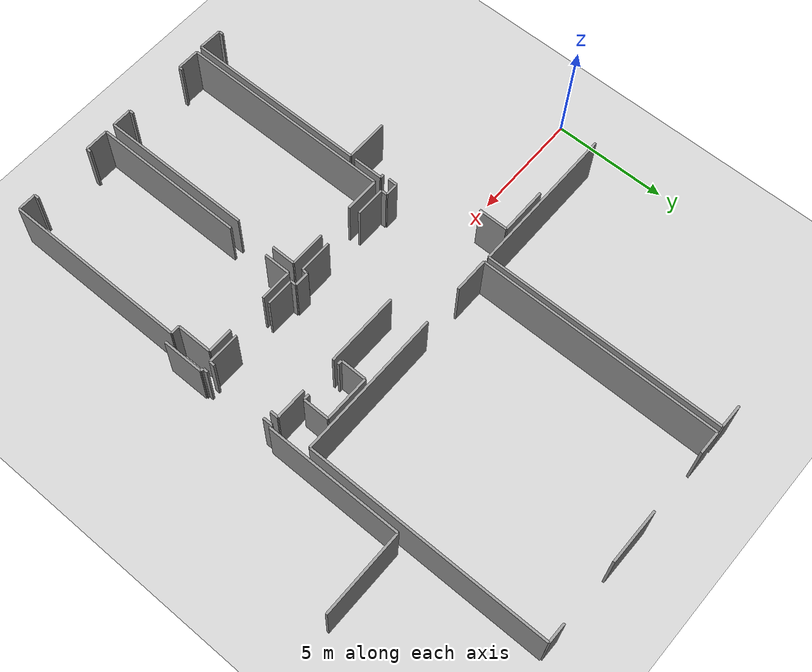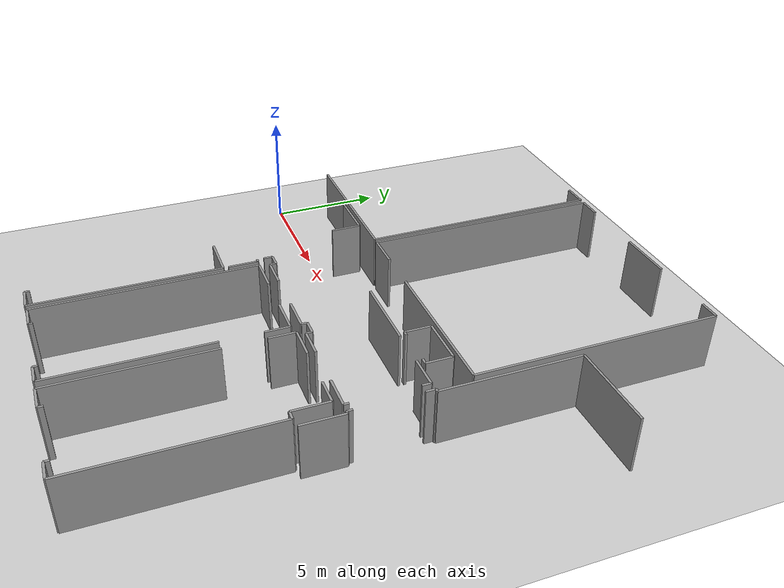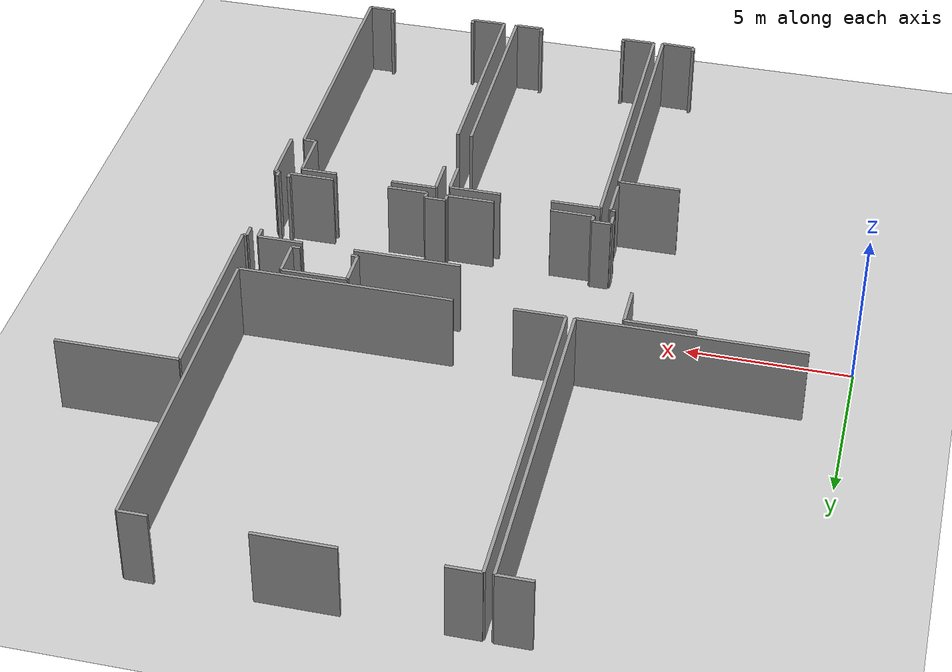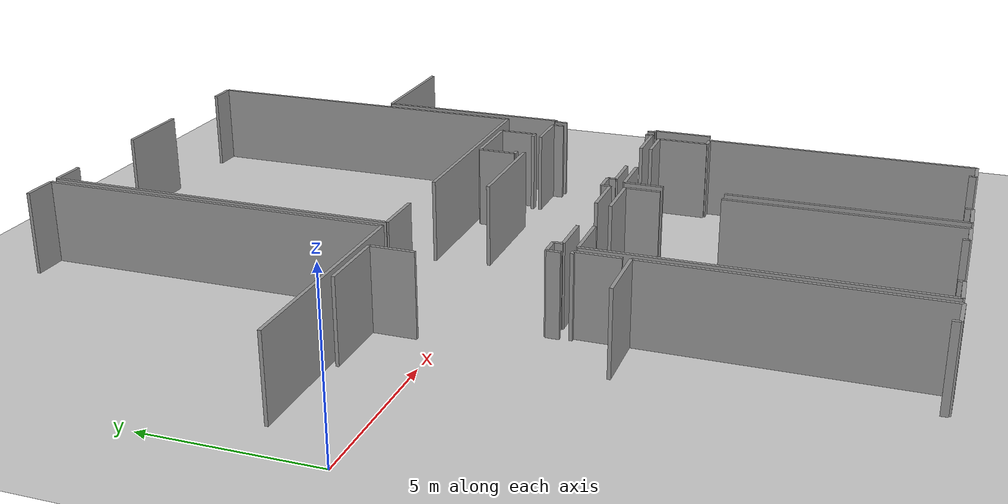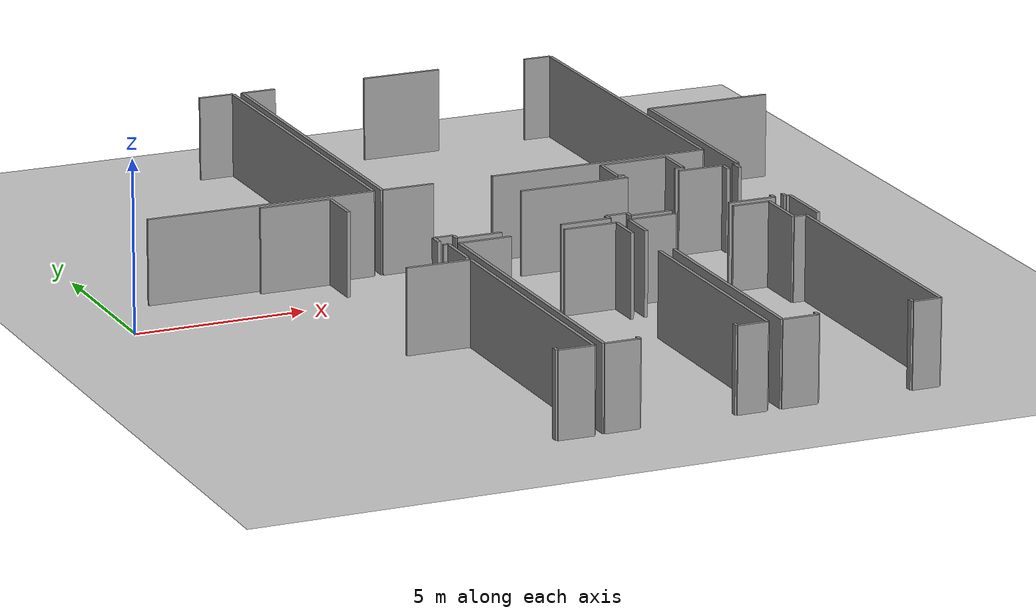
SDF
<sdf version="1.6">
 <world name="default">
  <model name="ground_plane">
   <static>1</static>
   <link name="link">
    <collision name="collision">
     <geometry><plane><normal>0 0 1</normal><size>100 100</size></plane></geometry>
     <surface><friction><ode><mu>100</mu><mu2>50</mu2></ode></friction></surface>
    </collision>
    <visual name="visual">
     <cast_shadows>0</cast_shadows>
     <geometry><plane><normal>0 0 1</normal><size>100 100</size></plane></geometry>
     <material>
      <script><uri>file://media/materials/scripts/gazebo.material</uri><name>Gazebo/Grey</name></script>
     </material>
    </visual>
   </link>
  </model>
  <model name="0510030966_A-40">
   <static>1</static>
   <link name="Wall_44">
    <collision name="Wall_44_Collision">
     <geometry><box><size>3.28197833183 0.1 2.5</size></box></geometry>
     <pose>1.64098916592 0 1.25 0 0 0</pose>
    </collision>
    <visual name="Wall_44_Visual">
     <pose>1.64098916592 0 1.25 0 0 0</pose>
     <geometry><box><size>3.28197833183 0.1 2.5</size></box></geometry>
     <material>
      <script><uri>file://media/materials/scripts/gazebo.material</uri><name>Gazebo/Grey</name></script>
      <ambient>1 1 1 1</ambient>
     </material>
    </visual>
    <pose>50.7630853645 -12.2985279362 0 0 0 0.0</pose>
   </link>
   <link name="Wall_45">
    <collision name="Wall_45_Collision">
     <geometry><box><size>1.38290170577 0.1 2.5</size></box></geometry>
     <pose>0.691450852883 0 1.25 0 0 0</pose>
    </collision>
    <visual name="Wall_45_Visual">
     <pose>0.691450852883 0 1.25 0 0 0</pose>
     <geometry><box><size>1.38290170577 0.1 2.5</size></box></geometry>
     <material>
      <script><uri>file://media/materials/scripts/gazebo.material</uri><name>Gazebo/Grey</name></script>
      <ambient>1 1 1 1</ambient>
     </material>
    </visual>
    <pose>55.64477411 -12.2985279362 0 0 0 0.0</pose>
   </link>
   <link name="Wall_46">
    <collision name="Wall_46_Collision">
     <geometry><box><size>0.361728881155 0.1 2.5</size></box></geometry>
     <pose>0.180864440578 0 1.25 0 0 0</pose>
    </collision>
    <visual name="Wall_46_Visual">
     <pose>0.180864440578 0 1.25 0 0 0</pose>
     <geometry><box><size>0.361728881155 0.1 2.5</size></box></geometry>
     <material>
      <script><uri>file://media/materials/scripts/gazebo.material</uri><name>Gazebo/Grey</name></script>
      <ambient>1 1 1 1</ambient>
     </material>
    </visual>
    <pose>57.0276758157 -12.2985279362 0 0 0 -1.57079632679</pose>
   </link>
   <link name="Wall_47">
    <collision name="Wall_47_Collision">
     <geometry><box><size>0.209950084463 0.1 2.5</size></box></geometry>
     <pose>0.104975042231 0 1.25 0 0 0</pose>
    </collision>
    <visual name="Wall_47_Visual">
     <pose>0.104975042231 0 1.25 0 0 0</pose>
     <geometry><box><size>0.209950084463 0.1 2.5</size></box></geometry>
     <material>
      <script><uri>file://media/materials/scripts/gazebo.material</uri><name>Gazebo/Grey</name></script>
      <ambient>1 1 1 1</ambient>
     </material>
    </visual>
    <pose>57.0276758157 -15.4362211525 0 0 0 -1.57079632679</pose>
   </link>
   <link name="Wall_48">
    <collision name="Wall_48_Collision">
     <geometry><box><size>1.40601780702 0.1 2.5</size></box></geometry>
     <pose>0.703008903509 0 1.25 0 0 0</pose>
    </collision>
    <visual name="Wall_48_Visual">
     <pose>0.703008903509 0 1.25 0 0 0</pose>
     <geometry><box><size>1.40601780702 0.1 2.5</size></box></geometry>
     <material>
      <script><uri>file://media/materials/scripts/gazebo.material</uri><name>Gazebo/Grey</name></script>
      <ambient>1 1 1 1</ambient>
     </material>
    </visual>
    <pose>57.0276758157 -15.646171237 0 0 0 3.14159265359</pose>
   </link>
   <link name="Wall_49">
    <collision name="Wall_49_Collision">
     <geometry><box><size>1.24153785579 0.1 2.5</size></box></geometry>
     <pose>0.620768927896 0 1.25 0 0 0</pose>
    </collision>
    <visual name="Wall_49_Visual">
     <pose>0.620768927896 0 1.25 0 0 0</pose>
     <geometry><box><size>1.24153785579 0.1 2.5</size></box></geometry>
     <material>
      <script><uri>file://media/materials/scripts/gazebo.material</uri><name>Gazebo/Grey</name></script>
      <ambient>1 1 1 1</ambient>
     </material>
    </visual>
    <pose>53.8617860364 -15.646171237 0 0 0 3.14159265359</pose>
   </link>
   <link name="Wall_50">
    <collision name="Wall_50_Collision">
     <geometry><box><size>0.251101825156 0.1 2.5</size></box></geometry>
     <pose>0.125550912578 0 1.25 0 0 0</pose>
    </collision>
    <visual name="Wall_50_Visual">
     <pose>0.125550912578 0 1.25 0 0 0</pose>
     <geometry><box><size>0.251101825156 0.1 2.5</size></box></geometry>
     <material>
      <script><uri>file://media/materials/scripts/gazebo.material</uri><name>Gazebo/Grey</name></script>
      <ambient>1 1 1 1</ambient>
     </material>
    </visual>
    <pose>52.6202481806 -15.646171237 0 0 0 1.57079632679</pose>
   </link>
   <link name="Wall_51">
    <collision name="Wall_51_Collision">
     <geometry><box><size>0.642678419468 0.1 2.5</size></box></geometry>
     <pose>0.321339209734 0 1.25 0 0 0</pose>
    </collision>
    <visual name="Wall_51_Visual">
     <pose>0.321339209734 0 1.25 0 0 0</pose>
     <geometry><box><size>0.642678419468 0.1 2.5</size></box></geometry>
     <material>
      <script><uri>file://media/materials/scripts/gazebo.material</uri><name>Gazebo/Grey</name></script>
      <ambient>1 1 1 1</ambient>
     </material>
    </visual>
    <pose>52.6202481806 -15.3950694118 0 0 0 3.14159265359</pose>
   </link>
   <link name="Wall_52">
    <collision name="Wall_52_Collision">
     <geometry><box><size>0.248307571158 0.1 2.5</size></box></geometry>
     <pose>0.124153785579 0 1.25 0 0 0</pose>
    </collision>
    <visual name="Wall_52_Visual">
     <pose>0.124153785579 0 1.25 0 0 0</pose>
     <geometry><box><size>0.248307571158 0.1 2.5</size></box></geometry>
     <material>
      <script><uri>file://media/materials/scripts/gazebo.material</uri><name>Gazebo/Grey</name></script>
      <ambient>1 1 1 1</ambient>
     </material>
    </visual>
    <pose>51.9775697611 -15.3950694118 0 0 0 -1.57079632679</pose>
   </link>
   <link name="Wall_53">
    <collision name="Wall_53_Collision">
     <geometry><box><size>1.47777933014 0.1 2.5</size></box></geometry>
     <pose>0.738889665071 0 1.25 0 0 0</pose>
    </collision>
    <visual name="Wall_53_Visual">
     <pose>0.738889665071 0 1.25 0 0 0</pose>
     <geometry><box><size>1.47777933014 0.1 2.5</size></box></geometry>
     <material>
      <script><uri>file://media/materials/scripts/gazebo.material</uri><name>Gazebo/Grey</name></script>
      <ambient>1 1 1 1</ambient>
     </material>
    </visual>
    <pose>51.9775697611 -15.643376983 0 0 0 3.14159265359</pose>
   </link>
   <link name="Wall_54">
    <collision name="Wall_54_Collision">
     <geometry><box><size>1.33362122617 0.1 2.5</size></box></geometry>
     <pose>0.666810613085 0 1.25 0 0 0</pose>
    </collision>
    <visual name="Wall_54_Visual">
     <pose>0.666810613085 0 1.25 0 0 0</pose>
     <geometry><box><size>1.33362122617 0.1 2.5</size></box></geometry>
     <material>
      <script><uri>file://media/materials/scripts/gazebo.material</uri><name>Gazebo/Grey</name></script>
      <ambient>1 1 1 1</ambient>
     </material>
    </visual>
    <pose>48.7089276415 -15.643376983 0 0 0 3.14159265359</pose>
   </link>
   <link name="Wall_55">
    <collision name="Wall_55_Collision">
     <geometry><box><size>0.271169649321 0.1 2.5</size></box></geometry>
     <pose>0.135584824661 0 1.25 0 0 0</pose>
    </collision>
    <visual name="Wall_55_Visual">
     <pose>0.135584824661 0 1.25 0 0 0</pose>
     <geometry><box><size>0.271169649321 0.1 2.5</size></box></geometry>
     <material>
      <script><uri>file://media/materials/scripts/gazebo.material</uri><name>Gazebo/Grey</name></script>
      <ambient>1 1 1 1</ambient>
     </material>
    </visual>
    <pose>47.3753064154 -15.643376983 0 0 0 1.57079632679</pose>
   </link>
   <link name="Wall_56">
    <collision name="Wall_56_Collision">
     <geometry><box><size>0.584253108608 0.1 2.5</size></box></geometry>
     <pose>0.292126554304 0 1.25 0 0 0</pose>
    </collision>
    <visual name="Wall_56_Visual">
     <pose>0.292126554304 0 1.25 0 0 0</pose>
     <geometry><box><size>0.584253108608 0.1 2.5</size></box></geometry>
     <material>
      <script><uri>file://media/materials/scripts/gazebo.material</uri><name>Gazebo/Grey</name></script>
      <ambient>1 1 1 1</ambient>
     </material>
    </visual>
    <pose>47.3753064154 -15.3722073336 0 0 0 3.14159265359</pose>
   </link>
   <link name="Wall_57">
    <collision name="Wall_57_Collision">
     <geometry><box><size>0.390052455768 0.1 2.5</size></box></geometry>
     <pose>0.195026227884 0 1.25 0 0 0</pose>
    </collision>
    <visual name="Wall_57_Visual">
     <pose>0.195026227884 0 1.25 0 0 0</pose>
     <geometry><box><size>0.390052455768 0.1 2.5</size></box></geometry>
     <material>
      <script><uri>file://media/materials/scripts/gazebo.material</uri><name>Gazebo/Grey</name></script>
      <ambient>1 1 1 1</ambient>
     </material>
    </visual>
    <pose>46.7910533067 -15.3722073336 0 0 0 -1.57079632679</pose>
   </link>
   <link name="Wall_159">
    <collision name="Wall_159_Collision">
     <geometry><box><size>8.13420039882 0.1 2.5</size></box></geometry>
     <pose>4.06710019941 0 1.25 0 0 0</pose>
    </collision>
    <visual name="Wall_159_Visual">
     <pose>4.06710019941 0 1.25 0 0 0</pose>
     <geometry><box><size>8.13420039882 0.1 2.5</size></box></geometry>
     <material>
      <script><uri>file://media/materials/scripts/gazebo.material</uri><name>Gazebo/Grey</name></script>
      <ambient>1 1 1 1</ambient>
     </material>
    </visual>
    <pose>46.9465154383 -25.727458626 0 0 0 1.57079632679</pose>
   </link>
   <link name="Wall_160">
    <collision name="Wall_160_Collision">
     <geometry><box><size>1.90949157278 0.1 2.5</size></box></geometry>
     <pose>0.954745786392 0 1.25 0 0 0</pose>
    </collision>
    <visual name="Wall_160_Visual">
     <pose>0.954745786392 0 1.25 0 0 0</pose>
     <geometry><box><size>1.90949157278 0.1 2.5</size></box></geometry>
     <material>
      <script><uri>file://media/materials/scripts/gazebo.material</uri><name>Gazebo/Grey</name></script>
      <ambient>1 1 1 1</ambient>
     </material>
    </visual>
    <pose>46.9465154383 -17.5932582272 0 0 0 3.14159265359</pose>
   </link>
   <link name="Wall_167">
    <collision name="Wall_167_Collision">
     <geometry><box><size>0.208679969009 0.1 2.5</size></box></geometry>
     <pose>0.104339984505 0 1.25 0 0 0</pose>
    </collision>
    <visual name="Wall_167_Visual">
     <pose>0.104339984505 0 1.25 0 0 0</pose>
     <geometry><box><size>0.208679969009 0.1 2.5</size></box></geometry>
     <material>
      <script><uri>file://media/materials/scripts/gazebo.material</uri><name>Gazebo/Grey</name></script>
      <ambient>1 1 1 1</ambient>
     </material>
    </visual>
    <pose>45.902607547 -25.493630371 0 0 0 -1.57079632679</pose>
   </link>
   <link name="Wall_168">
    <collision name="Wall_168_Collision">
     <geometry><box><size>1.04421076496 0.1 2.5</size></box></geometry>
     <pose>0.522105382479 0 1.25 0 0 0</pose>
    </collision>
    <visual name="Wall_168_Visual">
     <pose>0.522105382479 0 1.25 0 0 0</pose>
     <geometry><box><size>1.04421076496 0.1 2.5</size></box></geometry>
     <material>
      <script><uri>file://media/materials/scripts/gazebo.material</uri><name>Gazebo/Grey</name></script>
      <ambient>1 1 1 1</ambient>
     </material>
    </visual>
    <pose>45.902607547 -25.70231034 0 0 0 -0.0240858632459</pose>
   </link>
   <link name="Wall_169">
    <collision name="Wall_169_Collision">
     <geometry><box><size>6.78889411047 0.1 2.5</size></box></geometry>
     <pose>3.39444705524 0 1.25 0 0 0</pose>
    </collision>
    <visual name="Wall_169_Visual">
     <pose>3.39444705524 0 1.25 0 0 0</pose>
     <geometry><box><size>6.78889411047 0.1 2.5</size></box></geometry>
     <material>
      <script><uri>file://media/materials/scripts/gazebo.material</uri><name>Gazebo/Grey</name></script>
      <ambient>1 1 1 1</ambient>
     </material>
    </visual>
    <pose>51.9858255115 -25.7109471251 0 0 0 1.57079632679</pose>
   </link>
   <link name="Wall_170">
    <collision name="Wall_170_Collision">
     <geometry><box><size>1.05521191876 0.1 2.5</size></box></geometry>
     <pose>0.527605959382 0 1.25 0 0 0</pose>
    </collision>
    <visual name="Wall_170_Visual">
     <pose>0.527605959382 0 1.25 0 0 0</pose>
     <geometry><box><size>1.05521191876 0.1 2.5</size></box></geometry>
     <material>
      <script><uri>file://media/materials/scripts/gazebo.material</uri><name>Gazebo/Grey</name></script>
      <ambient>1 1 1 1</ambient>
     </material>
    </visual>
    <pose>51.9858255115 -17.1452885067 0 0 0 1.57079632679</pose>
   </link>
   <link name="Wall_171">
    <collision name="Wall_171_Collision">
     <geometry><box><size>1.59031155932 0.1 2.5</size></box></geometry>
     <pose>0.79515577966 0 1.25 0 0 0</pose>
    </collision>
    <visual name="Wall_171_Visual">
     <pose>0.79515577966 0 1.25 0 0 0</pose>
     <geometry><box><size>1.59031155932 0.1 2.5</size></box></geometry>
     <material>
      <script><uri>file://media/materials/scripts/gazebo.material</uri><name>Gazebo/Grey</name></script>
      <ambient>1 1 1 1</ambient>
     </material>
    </visual>
    <pose>51.9858255115 -16.090076588 0 0 0 3.14159265359</pose>
   </link>
   <link name="Wall_172">
    <collision name="Wall_172_Collision">
     <geometry><box><size>1.54623855308 0.1 2.5</size></box></geometry>
     <pose>0.773119276542 0 1.25 0 0 0</pose>
    </collision>
    <visual name="Wall_172_Visual">
     <pose>0.773119276542 0 1.25 0 0 0</pose>
     <geometry><box><size>1.54623855308 0.1 2.5</size></box></geometry>
     <material>
      <script><uri>file://media/materials/scripts/gazebo.material</uri><name>Gazebo/Grey</name></script>
      <ambient>1 1 1 1</ambient>
     </material>
    </visual>
    <pose>48.7961845732 -16.090076588 0 0 0 3.14159265359</pose>
   </link>
   <link name="Wall_173">
    <collision name="Wall_173_Collision">
     <geometry><box><size>9.59546822806 0.1 2.5</size></box></geometry>
     <pose>4.79773411403 0 1.25 0 0 0</pose>
    </collision>
    <visual name="Wall_173_Visual">
     <pose>4.79773411403 0 1.25 0 0 0</pose>
     <geometry><box><size>9.59546822806 0.1 2.5</size></box></geometry>
     <material>
      <script><uri>file://media/materials/scripts/gazebo.material</uri><name>Gazebo/Grey</name></script>
      <ambient>1 1 1 1</ambient>
     </material>
    </visual>
    <pose>47.2499460201 -16.090076588 0 0 0 -1.57079632679</pose>
   </link>
   <link name="Wall_174">
    <collision name="Wall_174_Collision">
     <geometry><box><size>1.02714236724 0.1 2.5</size></box></geometry>
     <pose>0.513571183621 0 1.25 0 0 0</pose>
    </collision>
    <visual name="Wall_174_Visual">
     <pose>0.513571183621 0 1.25 0 0 0</pose>
     <geometry><box><size>1.02714236724 0.1 2.5</size></box></geometry>
     <material>
      <script><uri>file://media/materials/scripts/gazebo.material</uri><name>Gazebo/Grey</name></script>
      <ambient>1 1 1 1</ambient>
     </material>
    </visual>
    <pose>47.2499460201 -25.685544816 0 0 0 0.0</pose>
   </link>
   <link name="Wall_175">
    <collision name="Wall_175_Collision">
     <geometry><box><size>0.165115008954 0.1 2.5</size></box></geometry>
     <pose>0.0825575044772 0 1.25 0 0 0</pose>
    </collision>
    <visual name="Wall_175_Visual">
     <pose>0.0825575044772 0 1.25 0 0 0</pose>
     <geometry><box><size>0.165115008954 0.1 2.5</size></box></geometry>
     <material>
      <script><uri>file://media/materials/scripts/gazebo.material</uri><name>Gazebo/Grey</name></script>
      <ambient>1 1 1 1</ambient>
     </material>
    </visual>
    <pose>48.2770883873 -25.685544816 0 0 0 1.57079632679</pose>
   </link>
   <link name="Wall_176">
    <collision name="Wall_176_Collision">
     <geometry><box><size>0.192041456568 0.1 2.5</size></box></geometry>
     <pose>0.0960207282842 0 1.25 0 0 0</pose>
    </collision>
    <visual name="Wall_176_Visual">
     <pose>0.0960207282842 0 1.25 0 0 0</pose>
     <geometry><box><size>0.192041456568 0.1 2.5</size></box></geometry>
     <material>
      <script><uri>file://media/materials/scripts/gazebo.material</uri><name>Gazebo/Grey</name></script>
      <ambient>1 1 1 1</ambient>
     </material>
    </visual>
    <pose>51.1025872252 -25.5204298071 0 0 0 -1.57079632679</pose>
   </link>
   <link name="Wall_177">
    <collision name="Wall_177_Collision">
     <geometry><box><size>0.883239601405 0.1 2.5</size></box></geometry>
     <pose>0.441619800703 0 1.25 0 0 0</pose>
    </collision>
    <visual name="Wall_177_Visual">
     <pose>0.441619800703 0 1.25 0 0 0</pose>
     <geometry><box><size>0.883239601405 0.1 2.5</size></box></geometry>
     <material>
      <script><uri>file://media/materials/scripts/gazebo.material</uri><name>Gazebo/Grey</name></script>
      <ambient>1 1 1 1</ambient>
     </material>
    </visual>
    <pose>51.1025872252 -25.7124712636 0 0 0 0.00172562382642</pose>
   </link>
   <link name="Wall_178">
    <collision name="Wall_178_Collision">
     <geometry><box><size>6.78965617975 0.1 2.5</size></box></geometry>
     <pose>3.39482808987 0 1.25 0 0 0</pose>
    </collision>
    <visual name="Wall_178_Visual">
     <pose>3.39482808987 0 1.25 0 0 0</pose>
     <geometry><box><size>6.78965617975 0.1 2.5</size></box></geometry>
     <material>
      <script><uri>file://media/materials/scripts/gazebo.material</uri><name>Gazebo/Grey</name></script>
      <ambient>1 1 1 1</ambient>
     </material>
    </visual>
    <pose>52.4177917773 -25.7119632175 0 0 0 1.57079632679</pose>
   </link>
   <link name="Wall_179">
    <collision name="Wall_179_Collision">
     <geometry><box><size>1.16190161686 0.1 2.5</size></box></geometry>
     <pose>0.580950808428 0 1.25 0 0 0</pose>
    </collision>
    <visual name="Wall_179_Visual">
     <pose>0.580950808428 0 1.25 0 0 0</pose>
     <geometry><box><size>1.16190161686 0.1 2.5</size></box></geometry>
     <material>
      <script><uri>file://media/materials/scripts/gazebo.material</uri><name>Gazebo/Grey</name></script>
      <ambient>1 1 1 1</ambient>
     </material>
    </visual>
    <pose>52.4177917773 -17.1212833247 0 0 0 1.57079632679</pose>
   </link>
   <link name="Wall_180">
    <collision name="Wall_180_Collision">
     <geometry><box><size>1.41338447665 0.1 2.5</size></box></geometry>
     <pose>0.706692238324 0 1.25 0 0 0</pose>
    </collision>
    <visual name="Wall_180_Visual">
     <pose>0.706692238324 0 1.25 0 0 0</pose>
     <geometry><box><size>1.41338447665 0.1 2.5</size></box></geometry>
     <material>
      <script><uri>file://media/materials/scripts/gazebo.material</uri><name>Gazebo/Grey</name></script>
      <ambient>1 1 1 1</ambient>
     </material>
    </visual>
    <pose>52.4177917773 -15.9593817078 0 0 0 0.0</pose>
   </link>
   <link name="Wall_181">
    <collision name="Wall_181_Collision">
     <geometry><box><size>1.12176596853 0.1 2.5</size></box></geometry>
     <pose>0.560882984263 0 1.25 0 0 0</pose>
    </collision>
    <visual name="Wall_181_Visual">
     <pose>0.560882984263 0 1.25 0 0 0</pose>
     <geometry><box><size>1.12176596853 0.1 2.5</size></box></geometry>
     <material>
      <script><uri>file://media/materials/scripts/gazebo.material</uri><name>Gazebo/Grey</name></script>
      <ambient>1 1 1 1</ambient>
     </material>
    </visual>
    <pose>55.6031143231 -15.9593817078 0 0 0 0.0</pose>
   </link>
   <link name="Wall_182">
    <collision name="Wall_182_Collision">
     <geometry><box><size>1.56402016943 0.1 2.5</size></box></geometry>
     <pose>0.782010084717 0 1.25 0 0 0</pose>
    </collision>
    <visual name="Wall_182_Visual">
     <pose>0.782010084717 0 1.25 0 0 0</pose>
     <geometry><box><size>1.56402016943 0.1 2.5</size></box></geometry>
     <material>
      <script><uri>file://media/materials/scripts/gazebo.material</uri><name>Gazebo/Grey</name></script>
      <ambient>1 1 1 1</ambient>
     </material>
    </visual>
    <pose>56.7248802916 -15.9593817078 0 0 0 -1.57079632679</pose>
   </link>
   <link name="Wall_183">
    <collision name="Wall_183_Collision">
     <geometry><box><size>0.389925444223 0.1 2.5</size></box></geometry>
     <pose>0.194962722111 0 1.25 0 0 0</pose>
    </collision>
    <visual name="Wall_183_Visual">
     <pose>0.194962722111 0 1.25 0 0 0</pose>
     <geometry><box><size>0.389925444223 0.1 2.5</size></box></geometry>
     <material>
      <script><uri>file://media/materials/scripts/gazebo.material</uri><name>Gazebo/Grey</name></script>
      <ambient>1 1 1 1</ambient>
     </material>
    </visual>
    <pose>56.7248802916 -17.5234018772 0 0 0 0.0</pose>
   </link>
   <link name="Wall_184">
    <collision name="Wall_184_Collision">
     <geometry><box><size>8.17890846278 0.1 2.5</size></box></geometry>
     <pose>4.08945423139 0 1.25 0 0 0</pose>
    </collision>
    <visual name="Wall_184_Visual">
     <pose>4.08945423139 0 1.25 0 0 0</pose>
     <geometry><box><size>8.17890846278 0.1 2.5</size></box></geometry>
     <material>
      <script><uri>file://media/materials/scripts/gazebo.material</uri><name>Gazebo/Grey</name></script>
      <ambient>1 1 1 1</ambient>
     </material>
    </visual>
    <pose>57.1148057358 -17.5234018772 0 0 0 -1.57079632679</pose>
   </link>
   <link name="Wall_185">
    <collision name="Wall_185_Collision">
     <geometry><box><size>0.814906074962 0.1 2.5</size></box></geometry>
     <pose>0.407453037481 0 1.25 0 0 0</pose>
    </collision>
    <visual name="Wall_185_Visual">
     <pose>0.407453037481 0 1.25 0 0 0</pose>
     <geometry><box><size>0.814906074962 0.1 2.5</size></box></geometry>
     <material>
      <script><uri>file://media/materials/scripts/gazebo.material</uri><name>Gazebo/Grey</name></script>
      <ambient>1 1 1 1</ambient>
     </material>
    </visual>
    <pose>57.1148057358 -25.70231034 0 0 0 3.14159265359</pose>
   </link>
   <link name="Wall_186">
    <collision name="Wall_186_Collision">
     <geometry><box><size>0.208679969009 0.1 2.5</size></box></geometry>
     <pose>0.104339984505 0 1.25 0 0 0</pose>
    </collision>
    <visual name="Wall_186_Visual">
     <pose>0.104339984505 0 1.25 0 0 0</pose>
     <geometry><box><size>0.208679969009 0.1 2.5</size></box></geometry>
     <material>
      <script><uri>file://media/materials/scripts/gazebo.material</uri><name>Gazebo/Grey</name></script>
      <ambient>1 1 1 1</ambient>
     </material>
    </visual>
    <pose>56.2998996609 -25.70231034 0 0 0 1.57079632679</pose>
   </link>
   <link name="Wall_187">
    <collision name="Wall_187_Collision">
     <geometry><box><size>0.208679969009 0.1 2.5</size></box></geometry>
     <pose>0.104339984505 0 1.25 0 0 0</pose>
    </collision>
    <visual name="Wall_187_Visual">
     <pose>0.104339984505 0 1.25 0 0 0</pose>
     <geometry><box><size>0.208679969009 0.1 2.5</size></box></geometry>
     <material>
      <script><uri>file://media/materials/scripts/gazebo.material</uri><name>Gazebo/Grey</name></script>
      <ambient>1 1 1 1</ambient>
     </material>
    </visual>
    <pose>53.4854508275 -25.493630371 0 0 0 -1.57079632679</pose>
   </link>
   <link name="Wall_188">
    <collision name="Wall_188_Collision">
     <geometry><box><size>1.06770268593 0.1 2.5</size></box></geometry>
     <pose>0.533851342963 0 1.25 0 0 0</pose>
    </collision>
    <visual name="Wall_188_Visual">
     <pose>0.533851342963 0 1.25 0 0 0</pose>
     <geometry><box><size>1.06770268593 0.1 2.5</size></box></geometry>
     <material>
      <script><uri>file://media/materials/scripts/gazebo.material</uri><name>Gazebo/Grey</name></script>
      <ambient>1 1 1 1</ambient>
     </material>
    </visual>
    <pose>53.4854508275 -25.70231034 0 0 0 -3.13255173885</pose>
   </link>
   <link name="Wall_189">
    <collision name="Wall_189_Collision">
     <geometry><box><size>1.30707581319 0.1 2.5</size></box></geometry>
     <pose>0.653537906596 0 1.25 0 0 0</pose>
    </collision>
    <visual name="Wall_189_Visual">
     <pose>0.653537906596 0 1.25 0 0 0</pose>
     <geometry><box><size>1.30707581319 0.1 2.5</size></box></geometry>
     <material>
      <script><uri>file://media/materials/scripts/gazebo.material</uri><name>Gazebo/Grey</name></script>
      <ambient>1 1 1 1</ambient>
     </material>
    </visual>
    <pose>46.9396568148 -17.3681937688 0 0 0 1.57079632679</pose>
   </link>
   <link name="Wall_190">
    <collision name="Wall_190_Collision">
     <geometry><box><size>0.15978052405 0.1 2.5</size></box></geometry>
     <pose>0.0798902620248 0 1.25 0 0 0</pose>
    </collision>
    <visual name="Wall_190_Visual">
     <pose>0.0798902620248 0 1.25 0 0 0</pose>
     <geometry><box><size>0.15978052405 0.1 2.5</size></box></geometry>
     <material>
      <script><uri>file://media/materials/scripts/gazebo.material</uri><name>Gazebo/Grey</name></script>
      <ambient>1 1 1 1</ambient>
     </material>
    </visual>
    <pose>46.9396568148 -16.0611179556 0 0 0 3.14159265359</pose>
   </link>
   <link name="Wall_202">
    <collision name="Wall_202_Collision">
     <geometry><box><size>1.80242084005 0.1 2.5</size></box></geometry>
     <pose>0.901210420027 0 1.25 0 0 0</pose>
    </collision>
    <visual name="Wall_202_Visual">
     <pose>0.901210420027 0 1.25 0 0 0</pose>
     <geometry><box><size>1.80242084005 0.1 2.5</size></box></geometry>
     <material>
      <script><uri>file://media/materials/scripts/gazebo.material</uri><name>Gazebo/Grey</name></script>
      <ambient>1 1 1 1</ambient>
     </material>
    </visual>
    <pose>57.5129869305 -17.4591340353 0 0 0 1.57079632679</pose>
   </link>
   <link name="Wall_203">
    <collision name="Wall_203_Collision">
     <geometry><box><size>0.129932810893 0.1 2.5</size></box></geometry>
     <pose>0.0649664054463 0 1.25 0 0 0</pose>
    </collision>
    <visual name="Wall_203_Visual">
     <pose>0.0649664054463 0 1.25 0 0 0</pose>
     <geometry><box><size>0.129932810893 0.1 2.5</size></box></geometry>
     <material>
      <script><uri>file://media/materials/scripts/gazebo.material</uri><name>Gazebo/Grey</name></script>
      <ambient>1 1 1 1</ambient>
     </material>
    </visual>
    <pose>57.5129869305 -15.6567131952 0 0 0 3.14159265359</pose>
   </link>
   <link name="Wall_204">
    <collision name="Wall_204_Collision">
     <geometry><box><size>0.230525954809 0.1 2.5</size></box></geometry>
     <pose>0.115262977405 0 1.25 0 0 0</pose>
    </collision>
    <visual name="Wall_204_Visual">
     <pose>0.115262977405 0 1.25 0 0 0</pose>
     <geometry><box><size>0.230525954809 0.1 2.5</size></box></geometry>
     <material>
      <script><uri>file://media/materials/scripts/gazebo.material</uri><name>Gazebo/Grey</name></script>
      <ambient>1 1 1 1</ambient>
     </material>
    </visual>
    <pose>57.3830541196 -15.6567131952 0 0 0 1.57079632679</pose>
   </link>
   <link name="Wall_205">
    <collision name="Wall_205_Collision">
     <geometry><box><size>0.408596141389 0.1 2.5</size></box></geometry>
     <pose>0.204298070695 0 1.25 0 0 0</pose>
    </collision>
    <visual name="Wall_205_Visual">
     <pose>0.204298070695 0 1.25 0 0 0</pose>
     <geometry><box><size>0.408596141389 0.1 2.5</size></box></geometry>
     <material>
      <script><uri>file://media/materials/scripts/gazebo.material</uri><name>Gazebo/Grey</name></script>
      <ambient>1 1 1 1</ambient>
     </material>
    </visual>
    <pose>57.3830541196 -12.6751171682 0 0 0 1.57079632679</pose>
   </link>
   <link name="Wall_206">
    <collision name="Wall_206_Collision">
     <geometry><box><size>0.124852349079 0.1 2.5</size></box></geometry>
     <pose>0.0624261745393 0 1.25 0 0 0</pose>
    </collision>
    <visual name="Wall_206_Visual">
     <pose>0.0624261745393 0 1.25 0 0 0</pose>
     <geometry><box><size>0.124852349079 0.1 2.5</size></box></geometry>
     <material>
      <script><uri>file://media/materials/scripts/gazebo.material</uri><name>Gazebo/Grey</name></script>
      <ambient>1 1 1 1</ambient>
     </material>
    </visual>
    <pose>57.3830541196 -12.2665210268 0 0 0 0.0</pose>
   </link>
   <link name="Wall_207">
    <collision name="Wall_207_Collision">
     <geometry><box><size>6.00104149467 0.1 2.5</size></box></geometry>
     <pose>3.00052074734 0 1.25 0 0 0</pose>
    </collision>
    <visual name="Wall_207_Visual">
     <pose>3.00052074734 0 1.25 0 0 0</pose>
     <geometry><box><size>6.00104149467 0.1 2.5</size></box></geometry>
     <material>
      <script><uri>file://media/materials/scripts/gazebo.material</uri><name>Gazebo/Grey</name></script>
      <ambient>1 1 1 1</ambient>
     </material>
    </visual>
    <pose>57.5079064687 -12.2665210268 0 0 0 1.57079632679</pose>
   </link>
   <link name="Wall_208">
    <collision name="Wall_208_Collision">
     <geometry><box><size>3.74976185335 0.1 2.5</size></box></geometry>
     <pose>1.87488092668 0 1.25 0 0 0</pose>
    </collision>
    <visual name="Wall_208_Visual">
     <pose>1.87488092668 0 1.25 0 0 0</pose>
     <geometry><box><size>3.74976185335 0.1 2.5</size></box></geometry>
     <material>
      <script><uri>file://media/materials/scripts/gazebo.material</uri><name>Gazebo/Grey</name></script>
      <ambient>1 1 1 1</ambient>
     </material>
    </visual>
    <pose>57.5079064687 -6.26547953209 0 0 0 0.0</pose>
   </link>
   <link name="Wall_262">
    <collision name="Wall_262_Collision">
     <geometry><box><size>0.197756976109 0.1 2.5</size></box></geometry>
     <pose>0.0988784880546 0 1.25 0 0 0</pose>
    </collision>
    <visual name="Wall_262_Visual">
     <pose>0.0988784880546 0 1.25 0 0 0</pose>
     <geometry><box><size>0.197756976109 0.1 2.5</size></box></geometry>
     <material>
      <script><uri>file://media/materials/scripts/gazebo.material</uri><name>Gazebo/Grey</name></script>
      <ambient>1 1 1 1</ambient>
     </material>
    </visual>
    <pose>53.8530222397 -12.0433617416 0 0 0 0.0</pose>
   </link>
   <link name="Wall_263">
    <collision name="Wall_263_Collision">
     <geometry><box><size>0.261389760329 0.1 2.5</size></box></geometry>
     <pose>0.130694880165 0 1.25 0 0 0</pose>
    </collision>
    <visual name="Wall_263_Visual">
     <pose>0.130694880165 0 1.25 0 0 0</pose>
     <geometry><box><size>0.261389760329 0.1 2.5</size></box></geometry>
     <material>
      <script><uri>file://media/materials/scripts/gazebo.material</uri><name>Gazebo/Grey</name></script>
      <ambient>1 1 1 1</ambient>
     </material>
    </visual>
    <pose>55.6394396251 -12.0433617416 0 0 0 0.0</pose>
   </link>
   <link name="Wall_264">
    <collision name="Wall_264_Collision">
     <geometry><box><size>1.14551712751 0.1 2.5</size></box></geometry>
     <pose>0.572758563753 0 1.25 0 0 0</pose>
    </collision>
    <visual name="Wall_264_Visual">
     <pose>0.572758563753 0 1.25 0 0 0</pose>
     <geometry><box><size>1.14551712751 0.1 2.5</size></box></geometry>
     <material>
      <script><uri>file://media/materials/scripts/gazebo.material</uri><name>Gazebo/Grey</name></script>
      <ambient>1 1 1 1</ambient>
     </material>
    </visual>
    <pose>55.9008293854 -12.0433617416 0 0 0 1.57079632679</pose>
   </link>
   <link name="Wall_265">
    <collision name="Wall_265_Collision">
     <geometry><box><size>2.04056748758 0.1 2.5</size></box></geometry>
     <pose>1.02028374379 0 1.25 0 0 0</pose>
    </collision>
    <visual name="Wall_265_Visual">
     <pose>1.02028374379 0 1.25 0 0 0</pose>
     <geometry><box><size>2.04056748758 0.1 2.5</size></box></geometry>
     <material>
      <script><uri>file://media/materials/scripts/gazebo.material</uri><name>Gazebo/Grey</name></script>
      <ambient>1 1 1 1</ambient>
     </material>
    </visual>
    <pose>55.9008293854 -10.8978446141 0 0 0 3.14159265359</pose>
   </link>
   <link name="Wall_266">
    <collision name="Wall_266_Collision">
     <geometry><box><size>1.14554000457 0.1 2.5</size></box></geometry>
     <pose>0.572770002283 0 1.25 0 0 0</pose>
    </collision>
    <visual name="Wall_266_Visual">
     <pose>0.572770002283 0 1.25 0 0 0</pose>
     <geometry><box><size>1.14554000457 0.1 2.5</size></box></geometry>
     <material>
      <script><uri>file://media/materials/scripts/gazebo.material</uri><name>Gazebo/Grey</name></script>
      <ambient>1 1 1 1</ambient>
     </material>
    </visual>
    <pose>53.8602618978 -10.8978446141 0 0 0 -1.57711623378</pose>
   </link>
   <link name="Wall_267">
    <collision name="Wall_267_Collision">
     <geometry><box><size>6.55824114412 0.1 2.5</size></box></geometry>
     <pose>3.27912057206 0 1.25 0 0 0</pose>
    </collision>
    <visual name="Wall_267_Visual">
     <pose>3.27912057206 0 1.25 0 0 0</pose>
     <geometry><box><size>6.55824114412 0.1 2.5</size></box></geometry>
     <material>
      <script><uri>file://media/materials/scripts/gazebo.material</uri><name>Gazebo/Grey</name></script>
      <ambient>1 1 1 1</ambient>
     </material>
    </visual>
    <pose>57.1482097723 -10.6626192321 0 0 0 3.14159265359</pose>
   </link>
   <link name="Wall_268">
    <collision name="Wall_268_Collision">
     <geometry><box><size>1.54954085326 0.1 2.5</size></box></geometry>
     <pose>0.774770426632 0 1.25 0 0 0</pose>
    </collision>
    <visual name="Wall_268_Visual">
     <pose>0.774770426632 0 1.25 0 0 0</pose>
     <geometry><box><size>1.54954085326 0.1 2.5</size></box></geometry>
     <material>
      <script><uri>file://media/materials/scripts/gazebo.material</uri><name>Gazebo/Grey</name></script>
      <ambient>1 1 1 1</ambient>
     </material>
    </visual>
    <pose>48.7851345687 -10.6626192321 0 0 0 3.14159265359</pose>
   </link>
   <link name="Wall_269">
    <collision name="Wall_269_Collision">
     <geometry><box><size>10.6444565811 0.1 2.5</size></box></geometry>
     <pose>5.32222829055 0 1.25 0 0 0</pose>
    </collision>
    <visual name="Wall_269_Visual">
     <pose>5.32222829055 0 1.25 0 0 0</pose>
     <geometry><box><size>10.6444565811 0.1 2.5</size></box></geometry>
     <material>
      <script><uri>file://media/materials/scripts/gazebo.material</uri><name>Gazebo/Grey</name></script>
      <ambient>1 1 1 1</ambient>
     </material>
    </visual>
    <pose>47.2355937155 -10.6626192321 0 0 0 1.57079632679</pose>
   </link>
   <link name="Wall_270">
    <collision name="Wall_270_Collision">
     <geometry><box><size>1.02574524024 0.1 2.5</size></box></geometry>
     <pose>0.512872620121 0 1.25 0 0 0</pose>
    </collision>
    <visual name="Wall_270_Visual">
     <pose>0.512872620121 0 1.25 0 0 0</pose>
     <geometry><box><size>1.02574524024 0.1 2.5</size></box></geometry>
     <material>
      <script><uri>file://media/materials/scripts/gazebo.material</uri><name>Gazebo/Grey</name></script>
      <ambient>1 1 1 1</ambient>
     </material>
    </visual>
    <pose>47.2355937155 -0.018162650985 0 0 0 0.0</pose>
   </link>
   <link name="Wall_271">
    <collision name="Wall_271_Collision">
     <geometry><box><size>2.39962912629 0.1 2.5</size></box></geometry>
     <pose>1.19981456314 0 1.25 0 0 0</pose>
    </collision>
    <visual name="Wall_271_Visual">
     <pose>1.19981456314 0 1.25 0 0 0</pose>
     <geometry><box><size>2.39962912629 0.1 2.5</size></box></geometry>
     <material>
      <script><uri>file://media/materials/scripts/gazebo.material</uri><name>Gazebo/Grey</name></script>
      <ambient>1 1 1 1</ambient>
     </material>
    </visual>
    <pose>51.096490671 -0.018162650985 0 0 0 0.0</pose>
   </link>
   <link name="Wall_272">
    <collision name="Wall_272_Collision">
     <geometry><box><size>0.851104365387 0.1 2.5</size></box></geometry>
     <pose>0.425552182693 0 1.25 0 0 0</pose>
    </collision>
    <visual name="Wall_272_Visual">
     <pose>0.425552182693 0 1.25 0 0 0</pose>
     <geometry><box><size>0.851104365387 0.1 2.5</size></box></geometry>
     <material>
      <script><uri>file://media/materials/scripts/gazebo.material</uri><name>Gazebo/Grey</name></script>
      <ambient>1 1 1 1</ambient>
     </material>
    </visual>
    <pose>56.2800858598 -0.018162650985 0 0 0 0.0</pose>
   </link>
   <link name="Wall_273">
    <collision name="Wall_273_Collision">
     <geometry><box><size>10.6444701875 0.1 2.5</size></box></geometry>
     <pose>5.32223509374 0 1.25 0 0 0</pose>
    </collision>
    <visual name="Wall_273_Visual">
     <pose>5.32223509374 0 1.25 0 0 0</pose>
     <geometry><box><size>10.6444701875 0.1 2.5</size></box></geometry>
     <material>
      <script><uri>file://media/materials/scripts/gazebo.material</uri><name>Gazebo/Grey</name></script>
      <ambient>1 1 1 1</ambient>
     </material>
    </visual>
    <pose>57.1311902252 -0.018162650985 0 0 0 -1.56919741637</pose>
   </link>
   <link name="Wall_276">
    <collision name="Wall_276_Collision">
     <geometry><box><size>1.31215627501 0.1 2.5</size></box></geometry>
     <pose>0.656078137503 0 1.25 0 0 0</pose>
    </collision>
    <visual name="Wall_276_Visual">
     <pose>0.656078137503 0 1.25 0 0 0</pose>
     <geometry><box><size>1.31215627501 0.1 2.5</size></box></geometry>
     <material>
      <script><uri>file://media/materials/scripts/gazebo.material</uri><name>Gazebo/Grey</name></script>
      <ambient>1 1 1 1</ambient>
     </material>
    </visual>
    <pose>45.5702183328 -12.2053014619 0 0 0 1.57079632679</pose>
   </link>
   <link name="Wall_277">
    <collision name="Wall_277_Collision">
     <geometry><box><size>2.12248993434 0.1 2.5</size></box></geometry>
     <pose>1.06124496717 0 1.25 0 0 0</pose>
    </collision>
    <visual name="Wall_277_Visual">
     <pose>1.06124496717 0 1.25 0 0 0</pose>
     <geometry><box><size>2.12248993434 0.1 2.5</size></box></geometry>
     <material>
      <script><uri>file://media/materials/scripts/gazebo.material</uri><name>Gazebo/Grey</name></script>
      <ambient>1 1 1 1</ambient>
     </material>
    </visual>
    <pose>45.5702183328 -10.8931451869 0 0 0 3.14159265359</pose>
   </link>
   <link name="Wall_279">
    <collision name="Wall_279_Collision">
     <geometry><box><size>6.78241652166 0.1 2.5</size></box></geometry>
     <pose>3.39120826083 0 1.25 0 0 0</pose>
    </collision>
    <visual name="Wall_279_Visual">
     <pose>3.39120826083 0 1.25 0 0 0</pose>
     <geometry><box><size>6.78241652166 0.1 2.5</size></box></geometry>
     <material>
      <script><uri>file://media/materials/scripts/gazebo.material</uri><name>Gazebo/Grey</name></script>
      <ambient>1 1 1 1</ambient>
     </material>
    </visual>
    <pose>46.9688694702 -10.6473778466 0 0 0 3.14159265359</pose>
   </link>
   <link name="Wall_287">
    <collision name="Wall_287_Collision">
     <geometry><box><size>1.06029238058 0.1 2.5</size></box></geometry>
     <pose>0.530146190289 0 1.25 0 0 0</pose>
    </collision>
    <visual name="Wall_287_Visual">
     <pose>0.530146190289 0 1.25 0 0 0</pose>
     <geometry><box><size>1.06029238058 0.1 2.5</size></box></geometry>
     <material>
      <script><uri>file://media/materials/scripts/gazebo.material</uri><name>Gazebo/Grey</name></script>
      <ambient>1 1 1 1</ambient>
     </material>
    </visual>
    <pose>45.8866040923 -0.0121931083536 0 0 0 0.0</pose>
   </link>
   <link name="Wall_288">
    <collision name="Wall_288_Collision">
     <geometry><box><size>10.6352074371 0.1 2.5</size></box></geometry>
     <pose>5.31760371855 0 1.25 0 0 0</pose>
    </collision>
    <visual name="Wall_288_Visual">
     <pose>5.31760371855 0 1.25 0 0 0</pose>
     <geometry><box><size>10.6352074371 0.1 2.5</size></box></geometry>
     <material>
      <script><uri>file://media/materials/scripts/gazebo.material</uri><name>Gazebo/Grey</name></script>
      <ambient>1 1 1 1</ambient>
     </material>
    </visual>
    <pose>46.9468964729 -0.0121931083536 0 0 0 -1.56873026338</pose>
   </link>
   <pose>-38.95 12.877458626 0 0 0 0</pose>
  </model>
 </world>
</sdf>
